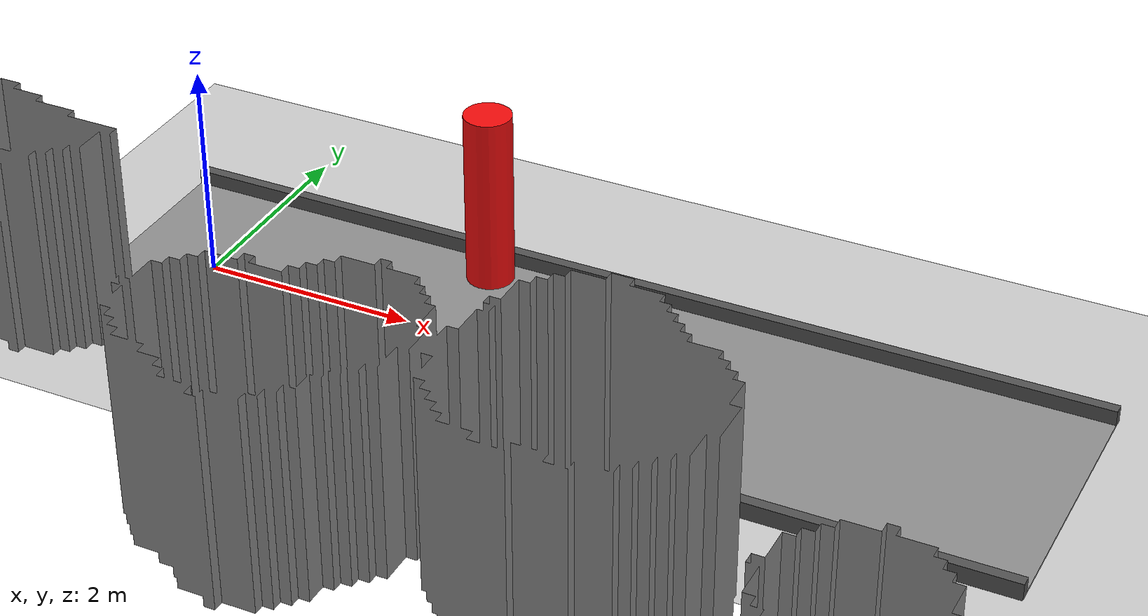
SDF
<?xml version="1.0"?>
<sdf version="1.6">
  <world name="static_dynamic_obstacles">
    <include><uri>model://sun</uri></include>
    <include><uri>model://ground_plane</uri></include>
    <!-- PGM-derived scan-visible surface proves simulation map/route consistency only; it is not survey, hardware, or passenger evidence. -->
    <include><uri>model://hanyang_aegimun_occupancy_walls</uri></include>

    <model name="sidewalk_slab">
      <static>true</static>
      <pose>3.6 0 0.011 0 0 0</pose>
      <link name="link">
        <collision name="collision"><geometry><box><size>9.0 2.4 0.02</size></box></geometry></collision>
        <visual name="visual"><geometry><box><size>9.0 2.4 0.02</size></box></geometry><material><ambient>0.56 0.56 0.56 1</ambient><diffuse>0.56 0.56 0.56 1</diffuse></material></visual>
      </link>
    </model>

    <model name="curb_left">
      <static>true</static>
      <pose>3.6 1.25 0.08 0 0 0</pose>
      <link name="link">
        <collision name="collision"><geometry><box><size>9.0 0.10 0.16</size></box></geometry></collision>
        <visual name="visual"><geometry><box><size>9.0 0.10 0.16</size></box></geometry><material><ambient>0.32 0.32 0.32 1</ambient><diffuse>0.32 0.32 0.32 1</diffuse></material></visual>
      </link>
    </model>

    <model name="curb_right">
      <static>true</static>
      <pose>3.6 -1.25 0.08 0 0 0</pose>
      <link name="link">
        <collision name="collision"><geometry><box><size>9.0 0.10 0.16</size></box></geometry></collision>
        <visual name="visual"><geometry><box><size>9.0 0.10 0.16</size></box></geometry><material><ambient>0.32 0.32 0.32 1</ambient><diffuse>0.32 0.32 0.32 1</diffuse></material></visual>
      </link>
    </model>

    <!-- Static obstacle: blue box parked in the corridor. -->
    <model name="static_obstacle_blue_box">
      <static>true</static>
      <pose>4.65 -0.45 0.35 0 0 0</pose>
      <link name="box">
        <collision name="collision"><geometry><box><size>0.60 0.55 0.70</size></box></geometry></collision>
        <visual name="visual"><geometry><box><size>0.60 0.55 0.70</size></box></geometry><material><ambient>0.05 0.20 0.95 1</ambient><diffuse>0.05 0.20 0.95 1</diffuse></material></visual>
      </link>
    </model>

    <!-- Moving obstacle: red person-like cylinder. A ROS demo script moves this model with /gazebo/set_model_state. -->
    <model name="moving_obstacle_red_person">
      <static>false</static>
      <pose>2.35 0.95 0.85 0 0 0</pose>
      <link name="body">
        <gravity>false</gravity>
        <collision name="collision"><geometry><cylinder><radius>0.22</radius><length>1.70</length></cylinder></geometry></collision>
        <visual name="visual"><geometry><cylinder><radius>0.22</radius><length>1.70</length></cylinder></geometry><material><ambient>0.95 0.05 0.05 1</ambient><diffuse>0.95 0.05 0.05 1</diffuse></material></visual>
        <inertial><mass>5.0</mass><inertia><ixx>1</ixx><iyy>1</iyy><izz>1</izz><ixy>0</ixy><ixz>0</ixz><iyz>0</iyz></inertia></inertial>
      </link>
    </model>

    <gui fullscreen="0">
      <camera name="user_camera">
        <pose>3.7 -4.8 3.1 0 0.56 1.13</pose>
        <view_controller>orbit</view_controller>
      </camera>
    </gui>

    <physics name="ode" type="ode">
      <max_step_size>0.001</max_step_size>
      <real_time_update_rate>1000</real_time_update_rate>
    </physics>
  </world>
</sdf>

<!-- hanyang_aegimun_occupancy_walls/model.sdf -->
<!-- Generated by scripts/generate_hanyang_gazebo_model.py; do not edit. -->
<!-- map_yaml_sha256=9f36ab2d3d35a667996570b45babb7cb3ba8bd1e706a971af22603da1220e7ff -->
<!-- map_pgm_sha256=c89d791f71fe3d1705ae04724acf8ff6ba0ccc351fc162fe996982f9469a0278 -->
<!-- dimensions=3220x2361 resolution=0.1 origin=[-60.1,-148.4,0] -->
<!-- occupied_value=0 free_value=254 unknown_value=205 source_occupied_points=16629 final_occupied_cells=210223 boundary_segments=32712 boundary_faces=65424 wall_height=2 -->
<sdf version="1.6">
  <model name="hanyang_aegimun_occupancy_walls">
    <static>true</static>
    <pose>0 0 0 0 0 0</pose>
    <link name="occupancy_walls">
      <pose>0 0 0 0 0 0</pose>
      <collision name="occupancy_walls_collision">
        <geometry><mesh><uri>model://hanyang_aegimun_occupancy_walls/meshes/occupancy_walls.obj</uri></mesh></geometry>
      </collision>
      <visual name="occupancy_walls_visual">
        <geometry><mesh><uri>model://hanyang_aegimun_occupancy_walls/meshes/occupancy_walls.obj</uri></mesh></geometry>
        <material><ambient>0.45 0.45 0.45 1</ambient><diffuse>0.55 0.55 0.55 1</diffuse></material>
      </visual>
    </link>
  </model>
</sdf>
